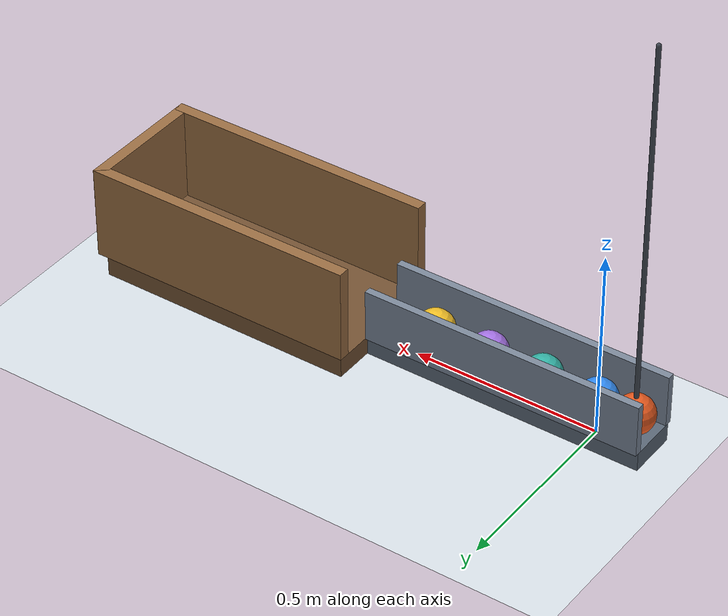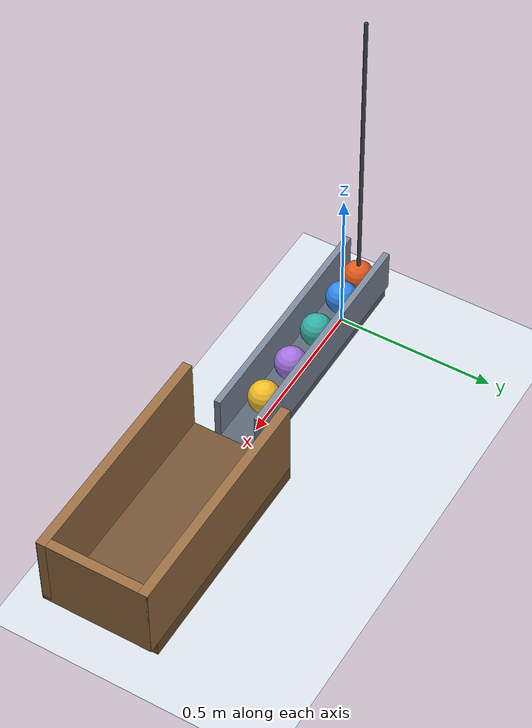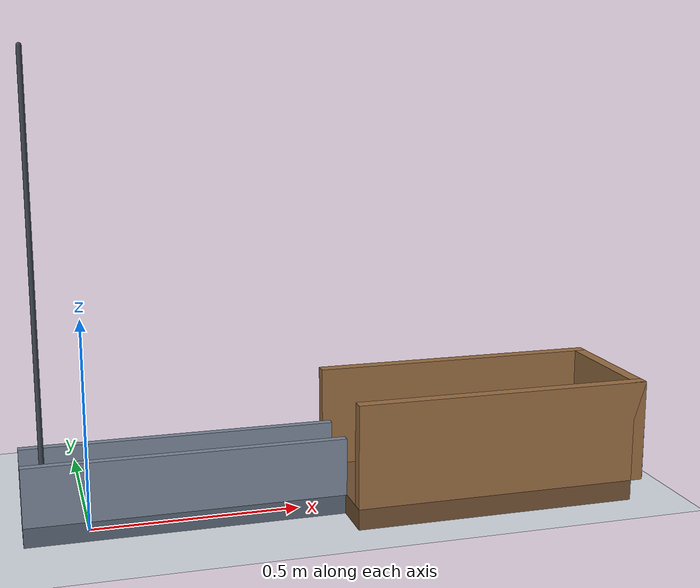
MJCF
<mujoco model="pendulum_four_ball_transfer">
  <compiler angle="radian" autolimits="true"/>
  <option timestep="0.002" gravity="0 0 -9.81" integrator="implicitfast" solver="Newton" iterations="100" tolerance="1e-10" cone="elliptic"/>
  <size njmax="1000" nconmax="200"/>

  <visual>
    <headlight ambient="0.35 0.35 0.35" diffuse="0.7 0.7 0.7" specular="0.2 0.2 0.2"/>
    <rgba haze="0.9 0.93 0.97 1"/>
  </visual>

  <worldbody>
    <light name="main_light" pos="-0.5 -2 4" dir="0.2 0.4 -1"/>
    <camera name="overview" pos="0.2 -3.4 2.1" xyaxes="1 0 0 0 0.45 0.893"/>

    <geom name="floor" type="plane" size="4 3 0.1" pos="0 0 0" contype="4" conaffinity="1" condim="6" friction="0.8 0.02 0.02" solref="0.01 1" rgba="0.84 0.87 0.9 1"/>

    <!-- One-metre pendulum: a 60-degree release raises its bob by 0.5 m. -->
    <body name="pendulum" pos="-0.1 0 1.1">
      <joint name="pendulum_hinge" type="hinge" axis="0 1 0" damping="0.003"/>
      <geom name="pendulum_rod" type="capsule" fromto="0 0 0 0 0 -1" size="0.006" mass="0.0002" contype="0" conaffinity="0" rgba="0.25 0.28 0.32 1"/>
      <geom name="pendulum_bob" type="sphere" pos="0 0 -1" size="0.05" mass="0.2" contype="2" conaffinity="1" condim="3" friction="0 0 0" solref="-40000 -10" solimp="0.95 0.99 0.001" rgba="0.9 0.35 0.12 1"/>
    </body>

    <!-- Level, low-friction guide; its top surface is at z = 0.05 m. -->
    <body name="rail" pos="0 0 0">
      <geom name="rail_base" type="box" pos="0.225 0 0.025" size="0.375 0.066 0.025" contype="4" conaffinity="1" priority="1" condim="3" friction="0.001 0 0" solref="0.008 1" solimp="0.95 0.99 0.001" rgba="0.35 0.4 0.46 1"/>
      <geom name="rail_left_guide" type="box" pos="0.225 0.066 0.12" size="0.375 0.01 0.07" contype="4" conaffinity="1" priority="1" condim="3" friction="0.001 0 0" solref="0.008 1" rgba="0.48 0.53 0.6 1"/>
      <geom name="rail_right_guide" type="box" pos="0.225 -0.066 0.12" size="0.375 0.01 0.07" contype="4" conaffinity="1" priority="1" condim="3" friction="0.001 0 0" solref="0.008 1" rgba="0.48 0.53 0.6 1"/>
    </body>

    <!-- Equal 0.2 kg balls, with centres spaced 0.15 m apart. -->
    <body name="ball1" pos="0 0 0.1">
      <freejoint name="ball1_free"/>
      <geom name="ball1_sphere" type="sphere" size="0.05" mass="0.2" contype="1" conaffinity="7" condim="3" friction="0 0 0" solref="-40000 -10" solimp="0.95 0.99 0.001" rgba="0.2 0.55 0.95 1"/>
    </body>

    <body name="ball2" pos="0.15 0 0.1">
      <freejoint name="ball2_free"/>
      <geom name="ball2_sphere" type="sphere" size="0.05" mass="0.2" contype="1" conaffinity="7" condim="3" friction="0 0 0" solref="-40000 -10" solimp="0.95 0.99 0.001" rgba="0.2 0.7 0.65 1"/>
    </body>

    <body name="ball3" pos="0.3 0 0.1">
      <freejoint name="ball3_free"/>
      <geom name="ball3_sphere" type="sphere" size="0.05" mass="0.2" contype="1" conaffinity="7" condim="3" friction="0 0 0" solref="-40000 -10" solimp="0.95 0.99 0.001" rgba="0.65 0.45 0.9 1"/>
    </body>

    <body name="ball4" pos="0.45 0 0.1">
      <freejoint name="ball4_free"/>
      <geom name="ball4_sphere" type="sphere" size="0.05" mass="0.2" contype="1" conaffinity="7" condim="3" friction="0 0 0" solref="-40000 -10" solimp="0.95 0.99 0.001" rgba="0.95 0.75 0.15 1"/>
    </body>

    <!-- Open entrance at x = 0.6; dissipative floor and walls catch ball4. -->
    <body name="box" pos="0 0 0">
      <geom name="box_bottom" type="box" pos="0.95 0 0.025" size="0.35 0.175 0.025" contype="4" conaffinity="1" priority="2" condim="6" friction="1.2 0.02 0.03" solref="0.008 1" solimp="0.95 0.99 0.001" rgba="0.45 0.32 0.2 1"/>
      <geom name="box_left_wall" type="box" pos="0.965 0.16 0.175" size="0.365 0.015 0.125" contype="4" conaffinity="1" priority="2" condim="6" friction="1.2 0.02 0.03" solref="0.008 1" solimp="0.95 0.99 0.001" rgba="0.6 0.43 0.26 1"/>
      <geom name="box_right_wall" type="box" pos="0.965 -0.16 0.175" size="0.365 0.015 0.125" contype="4" conaffinity="1" priority="2" condim="6" friction="1.2 0.02 0.03" solref="0.008 1" solimp="0.95 0.99 0.001" rgba="0.6 0.43 0.26 1"/>
      <geom name="box_back_wall" type="box" pos="1.315 0 0.175" size="0.015 0.175 0.125" contype="4" conaffinity="1" priority="2" condim="6" friction="1.2 0.02 0.03" solref="0.008 1" solimp="0.95 0.99 0.001" rgba="0.6 0.43 0.26 1"/>
    </body>
  </worldbody>

  <keyframe>
    <key name="start" qpos="1.047197551196598 0 0 0.1 1 0 0 0 0.15 0 0.1 1 0 0 0 0.3 0 0.1 1 0 0 0 0.45 0 0.1 1 0 0 0"/>
  </keyframe>
</mujoco>
